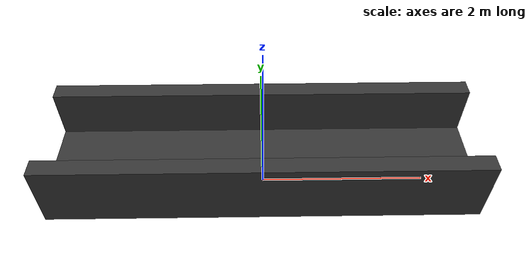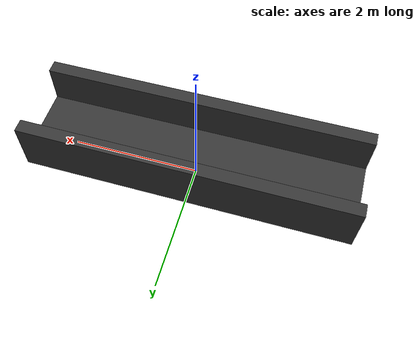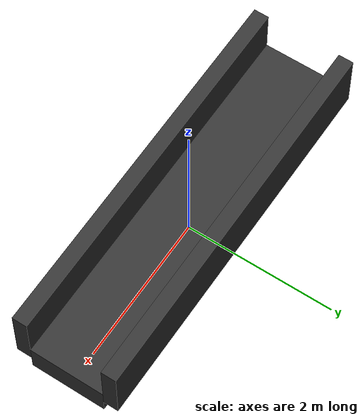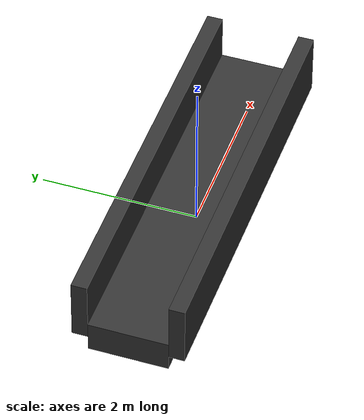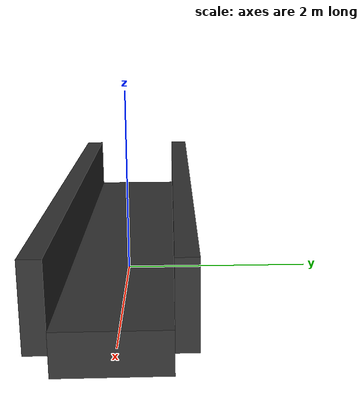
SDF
<?xml version="1.0"?>
<sdf version="1.8">
  <model name="box">
    <static>true</static>
    <pose>0 0 0.2 0 0 0</pose>
    <link name="body">
      <inertial>
        <mass>10.0</mass>
        <inertia>
          <ixx>0.166667</ixx>
          <ixy>0</ixy>
          <ixz>0</ixz>
          <iyy>0.166667</iyy>
          <iyz>0</iyz>
          <izz>0.166667</izz>
        </inertia>
      </inertial>
      <collision name="collision1">
        <geometry>
          <box>
            <size>5 1 0.4</size>
          </box>
        </geometry>
        <surface>
          <friction>
            <bullet>
              <friction>10.0</friction>
              <friction2>10.0</friction2>
            </bullet>
            <ode>
              <mu>100.0</mu>
              <mu2>100.0</mu2>
            </ode>
          </friction>
          <contact>
            <ode>
              <kp>1000000.0</kp> <!-- Жесткость поверхности (чтобы куб не микро-проваливался) -->
              <kd>100.0</kd>     <!-- Демпфирование контактов -->
              <min_depth>0.001</min_depth> <!-- Минимальная глубина проникновения для расчета сил -->
            </ode>
          </contact>
        </surface>
      </collision>
      <visual name="visual">
        <geometry>
          <box>
            <size>5 1 0.4</size>
          </box>
        </geometry>
        <material>
          <ambient>0.2 0.2 0.2 1</ambient>
          <diffuse>0.2 0.2 0.2 1</diffuse>
        </material>
      </visual>
      <collision name="bort_left">
        <pose>0 -0.6 0.4 0 0 0</pose>
        <geometry><box><size>5 0.2 0.8</size></box></geometry>
      </collision>
      <visual name="visual_bort_left">
        <pose>0 -0.6 0.4 0 0 0</pose>
        <geometry><box><size>5 0.2 0.8</size></box></geometry>
        <material>
          <ambient>0.2 0.2 0.2 1</ambient>
          <diffuse>0.2 0.2 0.2 1</diffuse>
        </material>
      </visual>
      <collision name="bort_right">
        <pose>0 0.6 0.4 0 0 0</pose>
        <geometry><box><size>5 0.2 0.8</size></box></geometry>
      </collision>
      <visual name="visual_bort_right">
        <pose>0 0.6 0.4 0 0 0</pose>
        <geometry><box><size>5 0.2 0.8</size></box></geometry>
        <material>
          <ambient>0.2 0.2 0.2 1</ambient>
          <diffuse>0.2 0.2 0.2 1</diffuse>
        </material>
      </visual>
    </link>
    <plugin
        filename="gz-sim-track-controller-system"
        name="gz::sim::systems::TrackController">
        <link>body</link>
        <velocity_topic>/conveyor/cmd_vel</velocity_topic>

    </plugin>
  </model>
</sdf>
